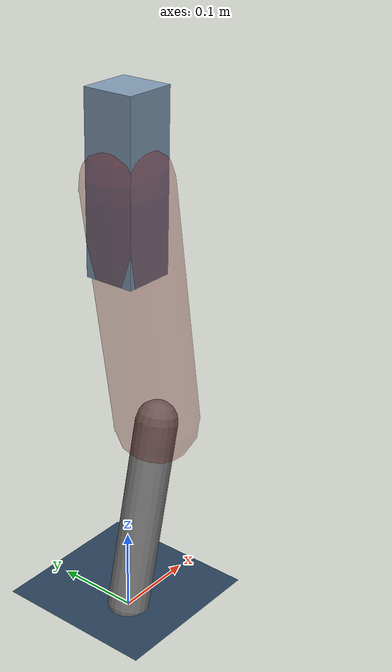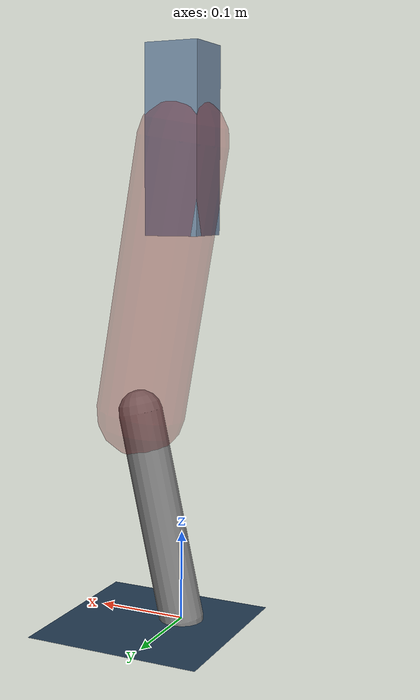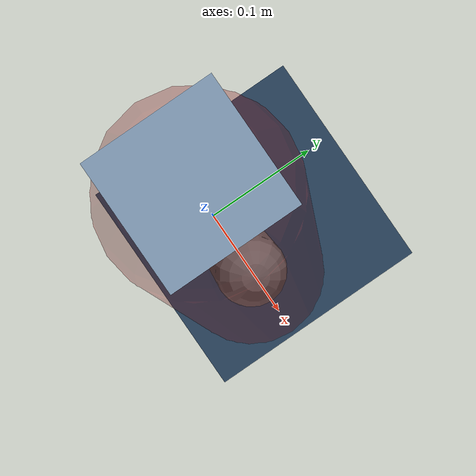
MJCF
<mujoco model="Hopper2D">
	<compiler inertiafromgeom="true" angle="radian" />
	<option timestep="0.001" integrator="implicit" cone="elliptic" solver="Newton" tolerance="1e-10" />

	<default>
		<geom contype="1" conaffinity="1" condim="3" friction="2 0.005 0.0001" solref="0.005 1" />
		<joint limited="true" damping="0.1" />
	</default>

	<asset>
		<texture name="skybox" type="skybox" builtin="gradient" rgb1=".4 .6 .8" rgb2="0 0 0" width="800" height="800" />
		<texture name="grid" type="2d" builtin="checker" rgb1=".1 .2 .3" rgb2=".2 .3 .4" width="300" height="300" mark="edge" markrgb=".2 .3 .4" />
		<material name="ground" texture="grid" texrepeat="1 1" texuniform="true" reflectance="0.1" />
		<material name="leg" rgba="0.5 0.6 0.7 1" />
	</asset>

	<worldbody>

		<geom name="floor" type="plane" size="5 5 0.25" material="ground" />

		<light directional="false" diffuse="0.8 0.8 0.8" specular="0.3 0.3 0.3" pos="0 0 2" dir="0 0 -1" />
		<light mode="targetbodycom" target="base" directional="false" diffuse="0.8 0.8 0.8" specular="0.3 0.3 0.3" pos="0 0 2" dir="0 0 -1" />

		<camera name="fixed" pos="0 -2 1" xyaxes="1 0 0 0 0 1" />
		<camera name="tracking" mode="trackcom" pos="0 -3 1" />

		<body name="root" pos="0 0 0.5287541222576273">
			<joint name="slide_x" type="slide" axis="1 0 0" range="-100 100" />
			<joint name="slide_z" type="slide" axis="0 0 1" range="0 10" />

			<body name="base" pos="0 0 0">
				<geom name="torso" type="box" size="0.03 0.03 0.1" mass="2.8120000000000003" material="leg" />

				<body name="link1" pos="0 0 0" euler="0 1.3999432260097213 0">
					<joint type="hinge" axis="0 -1 0" pos="0 0 0" name="hinge1" limited="true" range="-3.14 3.14" stiffness="0" damping="0.1" />
					<geom name="thigh" type="capsule" fromto="0 0 0 0.3015795412828336 0 0" size="0.05" rgba="0.5 0 0 0.3" mass="0.9929647614636508" />

					<body name="link2" pos="0.3015795412828336 0 0" euler="0 0.38876666908796653 0">
						<joint type="hinge" axis="0 -1 0" pos="0 0 0" name="hinge2" limited="true" range="-3.14 3.14" stiffness="0" damping="0.1" />
						<geom name="shank" type="capsule" fromto="0 0 0 0.23717458097479377 0 0" size="0.025" mass="0.43193966477983503" />

					</body>
				</body>
			</body>
		</body>
	</worldbody>

	<actuator>
		<motor name="torque1" joint="hinge1" ctrlrange="-48.77300146863719 48.77300146863719" ctrllimited="true" gear="1" />
		<motor name="torque2" joint="hinge2" ctrlrange="-124.3378301536657 124.3378301536657" ctrllimited="true" gear="1" />
	</actuator>
</mujoco>
